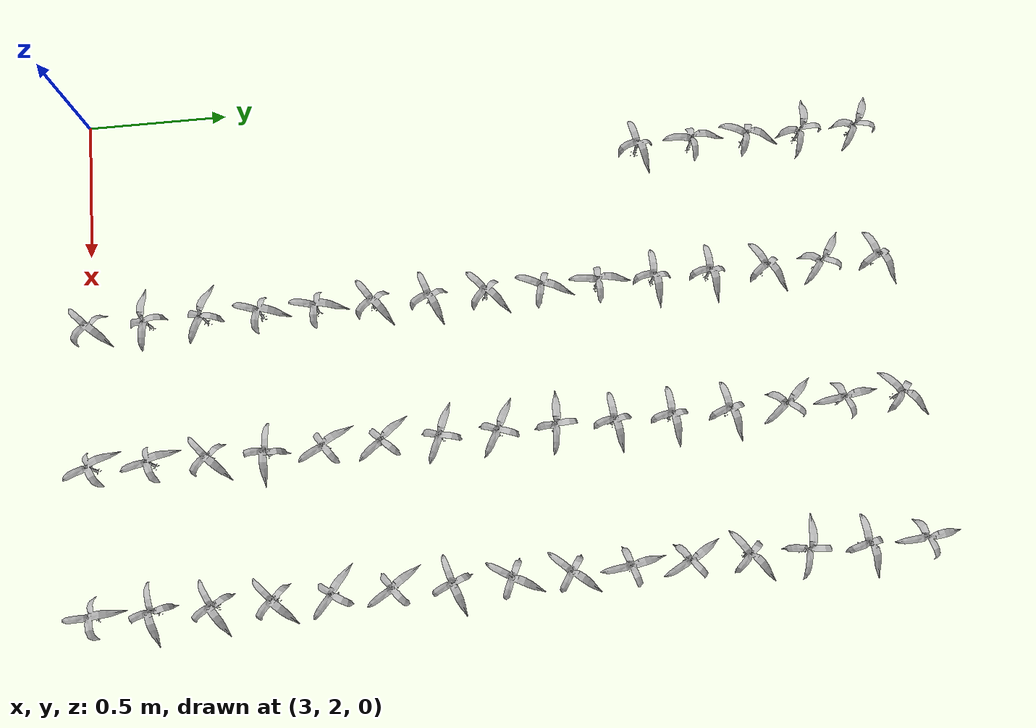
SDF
<sdf version="1.7">
 <world name="default">
  <model name="maize_3.304538114598593_3.9750000000000005">
   <static>1</static>
   <link name="link">
    <inertial>
     <mass>0.2</mass>
     <inertia>
      <ixx>0.166667</ixx>
      <ixy>0</ixy>
      <ixz>0</ixz>
      <iyy>0.166667</iyy>
      <iyz>0</iyz>
      <izz>0.166667</izz>
     </inertia>
    </inertial>
    <collision name="collision">
     <geometry><mesh><uri>model://corn_3/meshes/corn.dae</uri><scale>0.25 0.25 0.25</scale></mesh></geometry>
     <surface>
      <friction><ode><mu>0</mu><mu2>0</mu2></ode></friction>
      <contact><ode><kp>0</kp><kd>0</kd><max_vel>0</max_vel><min_depth>0.002</min_depth></ode></contact>
     </surface>
    </collision>
    <visual name="visual">
     <geometry><mesh><uri>model://corn_3/meshes/corn.dae</uri><scale>0.25 0.25 0.25</scale></mesh></geometry>
    </visual>
    <velocity_decay><linear>0</linear><angular>0</angular></velocity_decay>
   </link>
   <pose>3.30454 3.975 0.05 0 -0 0.302722</pose>
  </model>
  <model name="maize_3.304538114598593_4.170000000000001">
   <static>1</static>
   <link name="link">
    <inertial>
     <mass>0.2</mass>
     <inertia>
      <ixx>0.166667</ixx>
      <ixy>0</ixy>
      <ixz>0</ixz>
      <iyy>0.166667</iyy>
      <iyz>0</iyz>
      <izz>0.166667</izz>
     </inertia>
    </inertial>
    <collision name="collision">
     <geometry><mesh><uri>model://corn_3/meshes/corn.dae</uri><scale>0.25 0.25 0.25</scale></mesh></geometry>
     <surface>
      <friction><ode><mu>0</mu><mu2>0</mu2></ode></friction>
      <contact><ode><kp>0</kp><kd>0</kd><max_vel>0</max_vel><min_depth>0.002</min_depth></ode></contact>
     </surface>
    </collision>
    <visual name="visual">
     <geometry><mesh><uri>model://corn_3/meshes/corn.dae</uri><scale>0.25 0.25 0.25</scale></mesh></geometry>
    </visual>
    <velocity_decay><linear>0</linear><angular>0</angular></velocity_decay>
   </link>
   <pose>3.30454 4.17 0.05 0 -0 1.54632</pose>
  </model>
  <model name="maize_3.304538114598593_4.365000000000001">
   <static>1</static>
   <link name="link">
    <inertial>
     <mass>0.2</mass>
     <inertia>
      <ixx>0.166667</ixx>
      <ixy>0</ixy>
      <ixz>0</ixz>
      <iyy>0.166667</iyy>
      <iyz>0</iyz>
      <izz>0.166667</izz>
     </inertia>
    </inertial>
    <collision name="collision">
     <geometry><mesh><uri>model://corn_3/meshes/corn.dae</uri><scale>0.25 0.25 0.25</scale></mesh></geometry>
     <surface>
      <friction><ode><mu>0</mu><mu2>0</mu2></ode></friction>
      <contact><ode><kp>0</kp><kd>0</kd><max_vel>0</max_vel><min_depth>0.002</min_depth></ode></contact>
     </surface>
    </collision>
    <visual name="visual">
     <geometry><mesh><uri>model://corn_3/meshes/corn.dae</uri><scale>0.25 0.25 0.25</scale></mesh></geometry>
    </visual>
    <velocity_decay><linear>0</linear><angular>0</angular></velocity_decay>
   </link>
   <pose>3.30454 4.365 0.05 0 -0 1.19535</pose>
  </model>
  <model name="maize_3.304538114598593_4.56">
   <static>1</static>
   <link name="link">
    <inertial>
     <mass>0.2</mass>
     <inertia>
      <ixx>0.166667</ixx>
      <ixy>0</ixy>
      <ixz>0</ixz>
      <iyy>0.166667</iyy>
      <iyz>0</iyz>
      <izz>0.166667</izz>
     </inertia>
    </inertial>
    <collision name="collision">
     <geometry><mesh><uri>model://corn_3/meshes/corn.dae</uri><scale>0.25 0.25 0.25</scale></mesh></geometry>
     <surface>
      <friction><ode><mu>0</mu><mu2>0</mu2></ode></friction>
      <contact><ode><kp>0</kp><kd>0</kd><max_vel>0</max_vel><min_depth>0.002</min_depth></ode></contact>
     </surface>
    </collision>
    <visual name="visual">
     <geometry><mesh><uri>model://corn_3/meshes/corn.dae</uri><scale>0.25 0.25 0.25</scale></mesh></geometry>
    </visual>
    <velocity_decay><linear>0</linear><angular>0</angular></velocity_decay>
   </link>
   <pose>3.30454 4.56 0.05 0 -0 3.00074</pose>
  </model>
  <model name="maize_3.304538114598593_4.755">
   <static>1</static>
   <link name="link">
    <inertial>
     <mass>0.2</mass>
     <inertia>
      <ixx>0.166667</ixx>
      <ixy>0</ixy>
      <ixz>0</ixz>
      <iyy>0.166667</iyy>
      <iyz>0</iyz>
      <izz>0.166667</izz>
     </inertia>
    </inertial>
    <collision name="collision">
     <geometry><mesh><uri>model://corn_3/meshes/corn.dae</uri><scale>0.25 0.25 0.25</scale></mesh></geometry>
     <surface>
      <friction><ode><mu>0</mu><mu2>0</mu2></ode></friction>
      <contact><ode><kp>0</kp><kd>0</kd><max_vel>0</max_vel><min_depth>0.002</min_depth></ode></contact>
     </surface>
    </collision>
    <visual name="visual">
     <geometry><mesh><uri>model://corn_3/meshes/corn.dae</uri><scale>0.25 0.25 0.25</scale></mesh></geometry>
    </visual>
    <velocity_decay><linear>0</linear><angular>0</angular></velocity_decay>
   </link>
   <pose>3.30454 4.755 0.05 0 -0 2.71452</pose>
  </model>
  <model name="maize_3.792272817950934_2.0250000000000004">
   <static>1</static>
   <link name="link">
    <inertial>
     <mass>0.2</mass>
     <inertia>
      <ixx>0.166667</ixx>
      <ixy>0</ixy>
      <ixz>0</ixz>
      <iyy>0.166667</iyy>
      <iyz>0</iyz>
      <izz>0.166667</izz>
     </inertia>
    </inertial>
    <collision name="collision">
     <geometry><mesh><uri>model://corn_3/meshes/corn.dae</uri><scale>0.25 0.25 0.25</scale></mesh></geometry>
     <surface>
      <friction><ode><mu>0</mu><mu2>0</mu2></ode></friction>
      <contact><ode><kp>0</kp><kd>0</kd><max_vel>0</max_vel><min_depth>0.002</min_depth></ode></contact>
     </surface>
    </collision>
    <visual name="visual">
     <geometry><mesh><uri>model://corn_3/meshes/corn.dae</uri><scale>0.25 0.25 0.25</scale></mesh></geometry>
    </visual>
    <velocity_decay><linear>0</linear><angular>0</angular></velocity_decay>
   </link>
   <pose>3.79227 2.025 0.05 0 -0 0.865663</pose>
  </model>
  <model name="maize_3.792272817950934_2.2200000000000006">
   <static>1</static>
   <link name="link">
    <inertial>
     <mass>0.2</mass>
     <inertia>
      <ixx>0.166667</ixx>
      <ixy>0</ixy>
      <ixz>0</ixz>
      <iyy>0.166667</iyy>
      <iyz>0</iyz>
      <izz>0.166667</izz>
     </inertia>
    </inertial>
    <collision name="collision">
     <geometry><mesh><uri>model://corn_3/meshes/corn.dae</uri><scale>0.25 0.25 0.25</scale></mesh></geometry>
     <surface>
      <friction><ode><mu>0</mu><mu2>0</mu2></ode></friction>
      <contact><ode><kp>0</kp><kd>0</kd><max_vel>0</max_vel><min_depth>0.002</min_depth></ode></contact>
     </surface>
    </collision>
    <visual name="visual">
     <geometry><mesh><uri>model://corn_3/meshes/corn.dae</uri><scale>0.25 0.25 0.25</scale></mesh></geometry>
    </visual>
    <velocity_decay><linear>0</linear><angular>0</angular></velocity_decay>
   </link>
   <pose>3.79227 2.22 0.05 0 -0 3.11761</pose>
  </model>
  <model name="maize_3.792272817950934_2.415">
   <static>1</static>
   <link name="link">
    <inertial>
     <mass>0.2</mass>
     <inertia>
      <ixx>0.166667</ixx>
      <ixy>0</ixy>
      <ixz>0</ixz>
      <iyy>0.166667</iyy>
      <iyz>0</iyz>
      <izz>0.166667</izz>
     </inertia>
    </inertial>
    <collision name="collision">
     <geometry><mesh><uri>model://corn_3/meshes/corn.dae</uri><scale>0.25 0.25 0.25</scale></mesh></geometry>
     <surface>
      <friction><ode><mu>0</mu><mu2>0</mu2></ode></friction>
      <contact><ode><kp>0</kp><kd>0</kd><max_vel>0</max_vel><min_depth>0.002</min_depth></ode></contact>
     </surface>
    </collision>
    <visual name="visual">
     <geometry><mesh><uri>model://corn_3/meshes/corn.dae</uri><scale>0.25 0.25 0.25</scale></mesh></geometry>
    </visual>
    <velocity_decay><linear>0</linear><angular>0</angular></velocity_decay>
   </link>
   <pose>3.79227 2.415 0.05 0 -0 2.78088</pose>
  </model>
  <model name="maize_3.792272817950934_2.6100000000000003">
   <static>1</static>
   <link name="link">
    <inertial>
     <mass>0.2</mass>
     <inertia>
      <ixx>0.166667</ixx>
      <ixy>0</ixy>
      <ixz>0</ixz>
      <iyy>0.166667</iyy>
      <iyz>0</iyz>
      <izz>0.166667</izz>
     </inertia>
    </inertial>
    <collision name="collision">
     <geometry><mesh><uri>model://corn_3/meshes/corn.dae</uri><scale>0.25 0.25 0.25</scale></mesh></geometry>
     <surface>
      <friction><ode><mu>0</mu><mu2>0</mu2></ode></friction>
      <contact><ode><kp>0</kp><kd>0</kd><max_vel>0</max_vel><min_depth>0.002</min_depth></ode></contact>
     </surface>
    </collision>
    <visual name="visual">
     <geometry><mesh><uri>model://corn_3/meshes/corn.dae</uri><scale>0.25 0.25 0.25</scale></mesh></geometry>
    </visual>
    <velocity_decay><linear>0</linear><angular>0</angular></velocity_decay>
   </link>
   <pose>3.79227 2.61 0.05 0 -0 1.3439</pose>
  </model>
  <model name="maize_3.792272817950934_2.8050000000000006">
   <static>1</static>
   <link name="link">
    <inertial>
     <mass>0.2</mass>
     <inertia>
      <ixx>0.166667</ixx>
      <ixy>0</ixy>
      <ixz>0</ixz>
      <iyy>0.166667</iyy>
      <iyz>0</iyz>
      <izz>0.166667</izz>
     </inertia>
    </inertial>
    <collision name="collision">
     <geometry><mesh><uri>model://corn_3/meshes/corn.dae</uri><scale>0.25 0.25 0.25</scale></mesh></geometry>
     <surface>
      <friction><ode><mu>0</mu><mu2>0</mu2></ode></friction>
      <contact><ode><kp>0</kp><kd>0</kd><max_vel>0</max_vel><min_depth>0.002</min_depth></ode></contact>
     </surface>
    </collision>
    <visual name="visual">
     <geometry><mesh><uri>model://corn_3/meshes/corn.dae</uri><scale>0.25 0.25 0.25</scale></mesh></geometry>
    </visual>
    <velocity_decay><linear>0</linear><angular>0</angular></velocity_decay>
   </link>
   <pose>3.79227 2.805 0.05 0 -0 1.421</pose>
  </model>
  <model name="maize_3.792272817950934_3.000000000000001">
   <static>1</static>
   <link name="link">
    <inertial>
     <mass>0.2</mass>
     <inertia>
      <ixx>0.166667</ixx>
      <ixy>0</ixy>
      <ixz>0</ixz>
      <iyy>0.166667</iyy>
      <iyz>0</iyz>
      <izz>0.166667</izz>
     </inertia>
    </inertial>
    <collision name="collision">
     <geometry><mesh><uri>model://corn_3/meshes/corn.dae</uri><scale>0.25 0.25 0.25</scale></mesh></geometry>
     <surface>
      <friction><ode><mu>0</mu><mu2>0</mu2></ode></friction>
      <contact><ode><kp>0</kp><kd>0</kd><max_vel>0</max_vel><min_depth>0.002</min_depth></ode></contact>
     </surface>
    </collision>
    <visual name="visual">
     <geometry><mesh><uri>model://corn_3/meshes/corn.dae</uri><scale>0.25 0.25 0.25</scale></mesh></geometry>
    </visual>
    <velocity_decay><linear>0</linear><angular>0</angular></velocity_decay>
   </link>
   <pose>3.79227 3 0.05 0 -0 0.683355</pose>
  </model>
  <model name="maize_3.792272817950934_3.1950000000000003">
   <static>1</static>
   <link name="link">
    <inertial>
     <mass>0.2</mass>
     <inertia>
      <ixx>0.166667</ixx>
      <ixy>0</ixy>
      <ixz>0</ixz>
      <iyy>0.166667</iyy>
      <iyz>0</iyz>
      <izz>0.166667</izz>
     </inertia>
    </inertial>
    <collision name="collision">
     <geometry><mesh><uri>model://corn_3/meshes/corn.dae</uri><scale>0.25 0.25 0.25</scale></mesh></geometry>
     <surface>
      <friction><ode><mu>0</mu><mu2>0</mu2></ode></friction>
      <contact><ode><kp>0</kp><kd>0</kd><max_vel>0</max_vel><min_depth>0.002</min_depth></ode></contact>
     </surface>
    </collision>
    <visual name="visual">
     <geometry><mesh><uri>model://corn_3/meshes/corn.dae</uri><scale>0.25 0.25 0.25</scale></mesh></geometry>
    </visual>
    <velocity_decay><linear>0</linear><angular>0</angular></velocity_decay>
   </link>
   <pose>3.79227 3.195 0.05 0 -0 0.430194</pose>
  </model>
  <model name="maize_3.792272817950934_3.3899999999999997">
   <static>1</static>
   <link name="link">
    <inertial>
     <mass>0.2</mass>
     <inertia>
      <ixx>0.166667</ixx>
      <ixy>0</ixy>
      <ixz>0</ixz>
      <iyy>0.166667</iyy>
      <iyz>0</iyz>
      <izz>0.166667</izz>
     </inertia>
    </inertial>
    <collision name="collision">
     <geometry><mesh><uri>model://corn_3/meshes/corn.dae</uri><scale>0.25 0.25 0.25</scale></mesh></geometry>
     <surface>
      <friction><ode><mu>0</mu><mu2>0</mu2></ode></friction>
      <contact><ode><kp>0</kp><kd>0</kd><max_vel>0</max_vel><min_depth>0.002</min_depth></ode></contact>
     </surface>
    </collision>
    <visual name="visual">
     <geometry><mesh><uri>model://corn_3/meshes/corn.dae</uri><scale>0.25 0.25 0.25</scale></mesh></geometry>
    </visual>
    <velocity_decay><linear>0</linear><angular>0</angular></velocity_decay>
   </link>
   <pose>3.79227 3.39 0.05 0 -0 0.788651</pose>
  </model>
  <model name="maize_3.792272817950934_3.585">
   <static>1</static>
   <link name="link">
    <inertial>
     <mass>0.2</mass>
     <inertia>
      <ixx>0.166667</ixx>
      <ixy>0</ixy>
      <ixz>0</ixz>
      <iyy>0.166667</iyy>
      <iyz>0</iyz>
      <izz>0.166667</izz>
     </inertia>
    </inertial>
    <collision name="collision">
     <geometry><mesh><uri>model://corn_3/meshes/corn.dae</uri><scale>0.25 0.25 0.25</scale></mesh></geometry>
     <surface>
      <friction><ode><mu>0</mu><mu2>0</mu2></ode></friction>
      <contact><ode><kp>0</kp><kd>0</kd><max_vel>0</max_vel><min_depth>0.002</min_depth></ode></contact>
     </surface>
    </collision>
    <visual name="visual">
     <geometry><mesh><uri>model://corn_3/meshes/corn.dae</uri><scale>0.25 0.25 0.25</scale></mesh></geometry>
    </visual>
    <velocity_decay><linear>0</linear><angular>0</angular></velocity_decay>
   </link>
   <pose>3.79227 3.585 0.05 0 -0 1.2341</pose>
  </model>
  <model name="maize_3.792272817950934_3.7800000000000002">
   <static>1</static>
   <link name="link">
    <inertial>
     <mass>0.2</mass>
     <inertia>
      <ixx>0.166667</ixx>
      <ixy>0</ixy>
      <ixz>0</ixz>
      <iyy>0.166667</iyy>
      <iyz>0</iyz>
      <izz>0.166667</izz>
     </inertia>
    </inertial>
    <collision name="collision">
     <geometry><mesh><uri>model://corn_3/meshes/corn.dae</uri><scale>0.25 0.25 0.25</scale></mesh></geometry>
     <surface>
      <friction><ode><mu>0</mu><mu2>0</mu2></ode></friction>
      <contact><ode><kp>0</kp><kd>0</kd><max_vel>0</max_vel><min_depth>0.002</min_depth></ode></contact>
     </surface>
    </collision>
    <visual name="visual">
     <geometry><mesh><uri>model://corn_3/meshes/corn.dae</uri><scale>0.25 0.25 0.25</scale></mesh></geometry>
    </visual>
    <velocity_decay><linear>0</linear><angular>0</angular></velocity_decay>
   </link>
   <pose>3.79227 3.78 0.05 0 -0 1.50966</pose>
  </model>
  <model name="maize_3.792272817950934_3.9750000000000005">
   <static>1</static>
   <link name="link">
    <inertial>
     <mass>0.2</mass>
     <inertia>
      <ixx>0.166667</ixx>
      <ixy>0</ixy>
      <ixz>0</ixz>
      <iyy>0.166667</iyy>
      <iyz>0</iyz>
      <izz>0.166667</izz>
     </inertia>
    </inertial>
    <collision name="collision">
     <geometry><mesh><uri>model://corn_3/meshes/corn.dae</uri><scale>0.25 0.25 0.25</scale></mesh></geometry>
     <surface>
      <friction><ode><mu>0</mu><mu2>0</mu2></ode></friction>
      <contact><ode><kp>0</kp><kd>0</kd><max_vel>0</max_vel><min_depth>0.002</min_depth></ode></contact>
     </surface>
    </collision>
    <visual name="visual">
     <geometry><mesh><uri>model://corn_3/meshes/corn.dae</uri><scale>0.25 0.25 0.25</scale></mesh></geometry>
    </visual>
    <velocity_decay><linear>0</linear><angular>0</angular></velocity_decay>
   </link>
   <pose>3.79227 3.975 0.05 0 -0 0.119177</pose>
  </model>
  <model name="maize_3.792272817950934_4.170000000000001">
   <static>1</static>
   <link name="link">
    <inertial>
     <mass>0.2</mass>
     <inertia>
      <ixx>0.166667</ixx>
      <ixy>0</ixy>
      <ixz>0</ixz>
      <iyy>0.166667</iyy>
      <iyz>0</iyz>
      <izz>0.166667</izz>
     </inertia>
    </inertial>
    <collision name="collision">
     <geometry><mesh><uri>model://corn_3/meshes/corn.dae</uri><scale>0.25 0.25 0.25</scale></mesh></geometry>
     <surface>
      <friction><ode><mu>0</mu><mu2>0</mu2></ode></friction>
      <contact><ode><kp>0</kp><kd>0</kd><max_vel>0</max_vel><min_depth>0.002</min_depth></ode></contact>
     </surface>
    </collision>
    <visual name="visual">
     <geometry><mesh><uri>model://corn_3/meshes/corn.dae</uri><scale>0.25 0.25 0.25</scale></mesh></geometry>
    </visual>
    <velocity_decay><linear>0</linear><angular>0</angular></velocity_decay>
   </link>
   <pose>3.79227 4.17 0.05 0 -0 0.161159</pose>
  </model>
  <model name="maize_3.792272817950934_4.365000000000001">
   <static>1</static>
   <link name="link">
    <inertial>
     <mass>0.2</mass>
     <inertia>
      <ixx>0.166667</ixx>
      <ixy>0</ixy>
      <ixz>0</ixz>
      <iyy>0.166667</iyy>
      <iyz>0</iyz>
      <izz>0.166667</izz>
     </inertia>
    </inertial>
    <collision name="collision">
     <geometry><mesh><uri>model://corn_3/meshes/corn.dae</uri><scale>0.25 0.25 0.25</scale></mesh></geometry>
     <surface>
      <friction><ode><mu>0</mu><mu2>0</mu2></ode></friction>
      <contact><ode><kp>0</kp><kd>0</kd><max_vel>0</max_vel><min_depth>0.002</min_depth></ode></contact>
     </surface>
    </collision>
    <visual name="visual">
     <geometry><mesh><uri>model://corn_3/meshes/corn.dae</uri><scale>0.25 0.25 0.25</scale></mesh></geometry>
    </visual>
    <velocity_decay><linear>0</linear><angular>0</angular></velocity_decay>
   </link>
   <pose>3.79227 4.365 0.05 0 -0 0.593105</pose>
  </model>
  <model name="maize_3.792272817950934_4.56">
   <static>1</static>
   <link name="link">
    <inertial>
     <mass>0.2</mass>
     <inertia>
      <ixx>0.166667</ixx>
      <ixy>0</ixy>
      <ixz>0</ixz>
      <iyy>0.166667</iyy>
      <iyz>0</iyz>
      <izz>0.166667</izz>
     </inertia>
    </inertial>
    <collision name="collision">
     <geometry><mesh><uri>model://corn_3/meshes/corn.dae</uri><scale>0.25 0.25 0.25</scale></mesh></geometry>
     <surface>
      <friction><ode><mu>0</mu><mu2>0</mu2></ode></friction>
      <contact><ode><kp>0</kp><kd>0</kd><max_vel>0</max_vel><min_depth>0.002</min_depth></ode></contact>
     </surface>
    </collision>
    <visual name="visual">
     <geometry><mesh><uri>model://corn_3/meshes/corn.dae</uri><scale>0.25 0.25 0.25</scale></mesh></geometry>
    </visual>
    <velocity_decay><linear>0</linear><angular>0</angular></velocity_decay>
   </link>
   <pose>3.79227 4.56 0.05 0 -0 2.55872</pose>
  </model>
  <model name="maize_3.792272817950934_4.755">
   <static>1</static>
   <link name="link">
    <inertial>
     <mass>0.2</mass>
     <inertia>
      <ixx>0.166667</ixx>
      <ixy>0</ixy>
      <ixz>0</ixz>
      <iyy>0.166667</iyy>
      <iyz>0</iyz>
      <izz>0.166667</izz>
     </inertia>
    </inertial>
    <collision name="collision">
     <geometry><mesh><uri>model://corn_3/meshes/corn.dae</uri><scale>0.25 0.25 0.25</scale></mesh></geometry>
     <surface>
      <friction><ode><mu>0</mu><mu2>0</mu2></ode></friction>
      <contact><ode><kp>0</kp><kd>0</kd><max_vel>0</max_vel><min_depth>0.002</min_depth></ode></contact>
     </surface>
    </collision>
    <visual name="visual">
     <geometry><mesh><uri>model://corn_3/meshes/corn.dae</uri><scale>0.25 0.25 0.25</scale></mesh></geometry>
    </visual>
    <velocity_decay><linear>0</linear><angular>0</angular></velocity_decay>
   </link>
   <pose>3.79227 4.755 0.05 0 -0 0.458357</pose>
  </model>
  <model name="maize_4.279271472945556_2.0250000000000004">
   <static>1</static>
   <link name="link">
    <inertial>
     <mass>0.2</mass>
     <inertia>
      <ixx>0.166667</ixx>
      <ixy>0</ixy>
      <ixz>0</ixz>
      <iyy>0.166667</iyy>
      <iyz>0</iyz>
      <izz>0.166667</izz>
     </inertia>
    </inertial>
    <collision name="collision">
     <geometry><mesh><uri>model://corn_3/meshes/corn.dae</uri><scale>0.25 0.25 0.25</scale></mesh></geometry>
     <surface>
      <friction><ode><mu>0</mu><mu2>0</mu2></ode></friction>
      <contact><ode><kp>0</kp><kd>0</kd><max_vel>0</max_vel><min_depth>0.002</min_depth></ode></contact>
     </surface>
    </collision>
    <visual name="visual">
     <geometry><mesh><uri>model://corn_3/meshes/corn.dae</uri><scale>0.25 0.25 0.25</scale></mesh></geometry>
    </visual>
    <velocity_decay><linear>0</linear><angular>0</angular></velocity_decay>
   </link>
   <pose>4.27927 2.025 0.05 0 -0 2.0095</pose>
  </model>
  <model name="maize_4.279271472945556_2.2200000000000006">
   <static>1</static>
   <link name="link">
    <inertial>
     <mass>0.2</mass>
     <inertia>
      <ixx>0.166667</ixx>
      <ixy>0</ixy>
      <ixz>0</ixz>
      <iyy>0.166667</iyy>
      <iyz>0</iyz>
      <izz>0.166667</izz>
     </inertia>
    </inertial>
    <collision name="collision">
     <geometry><mesh><uri>model://corn_3/meshes/corn.dae</uri><scale>0.25 0.25 0.25</scale></mesh></geometry>
     <surface>
      <friction><ode><mu>0</mu><mu2>0</mu2></ode></friction>
      <contact><ode><kp>0</kp><kd>0</kd><max_vel>0</max_vel><min_depth>0.002</min_depth></ode></contact>
     </surface>
    </collision>
    <visual name="visual">
     <geometry><mesh><uri>model://corn_3/meshes/corn.dae</uri><scale>0.25 0.25 0.25</scale></mesh></geometry>
    </visual>
    <velocity_decay><linear>0</linear><angular>0</angular></velocity_decay>
   </link>
   <pose>4.27927 2.22 0.05 0 -0 1.87897</pose>
  </model>
  <model name="maize_4.279271472945556_2.415">
   <static>1</static>
   <link name="link">
    <inertial>
     <mass>0.2</mass>
     <inertia>
      <ixx>0.166667</ixx>
      <ixy>0</ixy>
      <ixz>0</ixz>
      <iyy>0.166667</iyy>
      <iyz>0</iyz>
      <izz>0.166667</izz>
     </inertia>
    </inertial>
    <collision name="collision">
     <geometry><mesh><uri>model://corn_3/meshes/corn.dae</uri><scale>0.25 0.25 0.25</scale></mesh></geometry>
     <surface>
      <friction><ode><mu>0</mu><mu2>0</mu2></ode></friction>
      <contact><ode><kp>0</kp><kd>0</kd><max_vel>0</max_vel><min_depth>0.002</min_depth></ode></contact>
     </surface>
    </collision>
    <visual name="visual">
     <geometry><mesh><uri>model://corn_3/meshes/corn.dae</uri><scale>0.25 0.25 0.25</scale></mesh></geometry>
    </visual>
    <velocity_decay><linear>0</linear><angular>0</angular></velocity_decay>
   </link>
   <pose>4.27927 2.415 0.05 0 -0 0.809149</pose>
  </model>
  <model name="maize_4.279271472945556_2.6100000000000003">
   <static>1</static>
   <link name="link">
    <inertial>
     <mass>0.2</mass>
     <inertia>
      <ixx>0.166667</ixx>
      <ixy>0</ixy>
      <ixz>0</ixz>
      <iyy>0.166667</iyy>
      <iyz>0</iyz>
      <izz>0.166667</izz>
     </inertia>
    </inertial>
    <collision name="collision">
     <geometry><mesh><uri>model://corn_3/meshes/corn.dae</uri><scale>0.25 0.25 0.25</scale></mesh></geometry>
     <surface>
      <friction><ode><mu>0</mu><mu2>0</mu2></ode></friction>
      <contact><ode><kp>0</kp><kd>0</kd><max_vel>0</max_vel><min_depth>0.002</min_depth></ode></contact>
     </surface>
    </collision>
    <visual name="visual">
     <geometry><mesh><uri>model://corn_3/meshes/corn.dae</uri><scale>0.25 0.25 0.25</scale></mesh></geometry>
    </visual>
    <velocity_decay><linear>0</linear><angular>0</angular></velocity_decay>
   </link>
   <pose>4.27927 2.61 0.05 0 -0 0.004294</pose>
  </model>
  <model name="maize_4.279271472945556_2.8050000000000006">
   <static>1</static>
   <link name="link">
    <inertial>
     <mass>0.2</mass>
     <inertia>
      <ixx>0.166667</ixx>
      <ixy>0</ixy>
      <ixz>0</ixz>
      <iyy>0.166667</iyy>
      <iyz>0</iyz>
      <izz>0.166667</izz>
     </inertia>
    </inertial>
    <collision name="collision">
     <geometry><mesh><uri>model://corn_3/meshes/corn.dae</uri><scale>0.25 0.25 0.25</scale></mesh></geometry>
     <surface>
      <friction><ode><mu>0</mu><mu2>0</mu2></ode></friction>
      <contact><ode><kp>0</kp><kd>0</kd><max_vel>0</max_vel><min_depth>0.002</min_depth></ode></contact>
     </surface>
    </collision>
    <visual name="visual">
     <geometry><mesh><uri>model://corn_3/meshes/corn.dae</uri><scale>0.25 0.25 0.25</scale></mesh></geometry>
    </visual>
    <velocity_decay><linear>0</linear><angular>0</angular></velocity_decay>
   </link>
   <pose>4.27927 2.805 0.05 0 -0 2.13438</pose>
  </model>
  <model name="maize_4.279271472945556_3.000000000000001">
   <static>1</static>
   <link name="link">
    <inertial>
     <mass>0.2</mass>
     <inertia>
      <ixx>0.166667</ixx>
      <ixy>0</ixy>
      <ixz>0</ixz>
      <iyy>0.166667</iyy>
      <iyz>0</iyz>
      <izz>0.166667</izz>
     </inertia>
    </inertial>
    <collision name="collision">
     <geometry><mesh><uri>model://corn_3/meshes/corn.dae</uri><scale>0.25 0.25 0.25</scale></mesh></geometry>
     <surface>
      <friction><ode><mu>0</mu><mu2>0</mu2></ode></friction>
      <contact><ode><kp>0</kp><kd>0</kd><max_vel>0</max_vel><min_depth>0.002</min_depth></ode></contact>
     </surface>
    </collision>
    <visual name="visual">
     <geometry><mesh><uri>model://corn_3/meshes/corn.dae</uri><scale>0.25 0.25 0.25</scale></mesh></geometry>
    </visual>
    <velocity_decay><linear>0</linear><angular>0</angular></velocity_decay>
   </link>
   <pose>4.27927 3 0.05 0 -0 2.31139</pose>
  </model>
  <model name="maize_4.279271472945556_3.1950000000000003">
   <static>1</static>
   <link name="link">
    <inertial>
     <mass>0.2</mass>
     <inertia>
      <ixx>0.166667</ixx>
      <ixy>0</ixy>
      <ixz>0</ixz>
      <iyy>0.166667</iyy>
      <iyz>0</iyz>
      <izz>0.166667</izz>
     </inertia>
    </inertial>
    <collision name="collision">
     <geometry><mesh><uri>model://corn_3/meshes/corn.dae</uri><scale>0.25 0.25 0.25</scale></mesh></geometry>
     <surface>
      <friction><ode><mu>0</mu><mu2>0</mu2></ode></friction>
      <contact><ode><kp>0</kp><kd>0</kd><max_vel>0</max_vel><min_depth>0.002</min_depth></ode></contact>
     </surface>
    </collision>
    <visual name="visual">
     <geometry><mesh><uri>model://corn_3/meshes/corn.dae</uri><scale>0.25 0.25 0.25</scale></mesh></geometry>
    </visual>
    <velocity_decay><linear>0</linear><angular>0</angular></velocity_decay>
   </link>
   <pose>4.27927 3.195 0.05 0 -0 2.81203</pose>
  </model>
  <model name="maize_4.279271472945556_3.3899999999999997">
   <static>1</static>
   <link name="link">
    <inertial>
     <mass>0.2</mass>
     <inertia>
      <ixx>0.166667</ixx>
      <ixy>0</ixy>
      <ixz>0</ixz>
      <iyy>0.166667</iyy>
      <iyz>0</iyz>
      <izz>0.166667</izz>
     </inertia>
    </inertial>
    <collision name="collision">
     <geometry><mesh><uri>model://corn_3/meshes/corn.dae</uri><scale>0.25 0.25 0.25</scale></mesh></geometry>
     <surface>
      <friction><ode><mu>0</mu><mu2>0</mu2></ode></friction>
      <contact><ode><kp>0</kp><kd>0</kd><max_vel>0</max_vel><min_depth>0.002</min_depth></ode></contact>
     </surface>
    </collision>
    <visual name="visual">
     <geometry><mesh><uri>model://corn_3/meshes/corn.dae</uri><scale>0.25 0.25 0.25</scale></mesh></geometry>
    </visual>
    <velocity_decay><linear>0</linear><angular>0</angular></velocity_decay>
   </link>
   <pose>4.27927 3.39 0.05 0 -0 2.71425</pose>
  </model>
  <model name="maize_4.279271472945556_3.585">
   <static>1</static>
   <link name="link">
    <inertial>
     <mass>0.2</mass>
     <inertia>
      <ixx>0.166667</ixx>
      <ixy>0</ixy>
      <ixz>0</ixz>
      <iyy>0.166667</iyy>
      <iyz>0</iyz>
      <izz>0.166667</izz>
     </inertia>
    </inertial>
    <collision name="collision">
     <geometry><mesh><uri>model://corn_3/meshes/corn.dae</uri><scale>0.25 0.25 0.25</scale></mesh></geometry>
     <surface>
      <friction><ode><mu>0</mu><mu2>0</mu2></ode></friction>
      <contact><ode><kp>0</kp><kd>0</kd><max_vel>0</max_vel><min_depth>0.002</min_depth></ode></contact>
     </surface>
    </collision>
    <visual name="visual">
     <geometry><mesh><uri>model://corn_3/meshes/corn.dae</uri><scale>0.25 0.25 0.25</scale></mesh></geometry>
    </visual>
    <velocity_decay><linear>0</linear><angular>0</angular></velocity_decay>
   </link>
   <pose>4.27927 3.585 0.05 0 -0 3.1112</pose>
  </model>
  <model name="maize_4.279271472945556_3.7800000000000002">
   <static>1</static>
   <link name="link">
    <inertial>
     <mass>0.2</mass>
     <inertia>
      <ixx>0.166667</ixx>
      <ixy>0</ixy>
      <ixz>0</ixz>
      <iyy>0.166667</iyy>
      <iyz>0</iyz>
      <izz>0.166667</izz>
     </inertia>
    </inertial>
    <collision name="collision">
     <geometry><mesh><uri>model://corn_3/meshes/corn.dae</uri><scale>0.25 0.25 0.25</scale></mesh></geometry>
     <surface>
      <friction><ode><mu>0</mu><mu2>0</mu2></ode></friction>
      <contact><ode><kp>0</kp><kd>0</kd><max_vel>0</max_vel><min_depth>0.002</min_depth></ode></contact>
     </surface>
    </collision>
    <visual name="visual">
     <geometry><mesh><uri>model://corn_3/meshes/corn.dae</uri><scale>0.25 0.25 0.25</scale></mesh></geometry>
    </visual>
    <velocity_decay><linear>0</linear><angular>0</angular></velocity_decay>
   </link>
   <pose>4.27927 3.78 0.05 0 -0 0.19721</pose>
  </model>
  <model name="maize_4.279271472945556_3.9750000000000005">
   <static>1</static>
   <link name="link">
    <inertial>
     <mass>0.2</mass>
     <inertia>
      <ixx>0.166667</ixx>
      <ixy>0</ixy>
      <ixz>0</ixz>
      <iyy>0.166667</iyy>
      <iyz>0</iyz>
      <izz>0.166667</izz>
     </inertia>
    </inertial>
    <collision name="collision">
     <geometry><mesh><uri>model://corn_3/meshes/corn.dae</uri><scale>0.25 0.25 0.25</scale></mesh></geometry>
     <surface>
      <friction><ode><mu>0</mu><mu2>0</mu2></ode></friction>
      <contact><ode><kp>0</kp><kd>0</kd><max_vel>0</max_vel><min_depth>0.002</min_depth></ode></contact>
     </surface>
    </collision>
    <visual name="visual">
     <geometry><mesh><uri>model://corn_3/meshes/corn.dae</uri><scale>0.25 0.25 0.25</scale></mesh></geometry>
    </visual>
    <velocity_decay><linear>0</linear><angular>0</angular></velocity_decay>
   </link>
   <pose>4.27927 3.975 0.05 0 -0 0.161831</pose>
  </model>
  <model name="maize_4.279271472945556_4.170000000000001">
   <static>1</static>
   <link name="link">
    <inertial>
     <mass>0.2</mass>
     <inertia>
      <ixx>0.166667</ixx>
      <ixy>0</ixy>
      <ixz>0</ixz>
      <iyy>0.166667</iyy>
      <iyz>0</iyz>
      <izz>0.166667</izz>
     </inertia>
    </inertial>
    <collision name="collision">
     <geometry><mesh><uri>model://corn_3/meshes/corn.dae</uri><scale>0.25 0.25 0.25</scale></mesh></geometry>
     <surface>
      <friction><ode><mu>0</mu><mu2>0</mu2></ode></friction>
      <contact><ode><kp>0</kp><kd>0</kd><max_vel>0</max_vel><min_depth>0.002</min_depth></ode></contact>
     </surface>
    </collision>
    <visual name="visual">
     <geometry><mesh><uri>model://corn_3/meshes/corn.dae</uri><scale>0.25 0.25 0.25</scale></mesh></geometry>
    </visual>
    <velocity_decay><linear>0</linear><angular>0</angular></velocity_decay>
   </link>
   <pose>4.27927 4.17 0.05 0 -0 0.282252</pose>
  </model>
  <model name="maize_4.279271472945556_4.365000000000001">
   <static>1</static>
   <link name="link">
    <inertial>
     <mass>0.2</mass>
     <inertia>
      <ixx>0.166667</ixx>
      <ixy>0</ixy>
      <ixz>0</ixz>
      <iyy>0.166667</iyy>
      <iyz>0</iyz>
      <izz>0.166667</izz>
     </inertia>
    </inertial>
    <collision name="collision">
     <geometry><mesh><uri>model://corn_3/meshes/corn.dae</uri><scale>0.25 0.25 0.25</scale></mesh></geometry>
     <surface>
      <friction><ode><mu>0</mu><mu2>0</mu2></ode></friction>
      <contact><ode><kp>0</kp><kd>0</kd><max_vel>0</max_vel><min_depth>0.002</min_depth></ode></contact>
     </surface>
    </collision>
    <visual name="visual">
     <geometry><mesh><uri>model://corn_3/meshes/corn.dae</uri><scale>0.25 0.25 0.25</scale></mesh></geometry>
    </visual>
    <velocity_decay><linear>0</linear><angular>0</angular></velocity_decay>
   </link>
   <pose>4.27927 4.365 0.05 0 -0 2.34136</pose>
  </model>
  <model name="maize_4.279271472945556_4.56">
   <static>1</static>
   <link name="link">
    <inertial>
     <mass>0.2</mass>
     <inertia>
      <ixx>0.166667</ixx>
      <ixy>0</ixy>
      <ixz>0</ixz>
      <iyy>0.166667</iyy>
      <iyz>0</iyz>
      <izz>0.166667</izz>
     </inertia>
    </inertial>
    <collision name="collision">
     <geometry><mesh><uri>model://corn_3/meshes/corn.dae</uri><scale>0.25 0.25 0.25</scale></mesh></geometry>
     <surface>
      <friction><ode><mu>0</mu><mu2>0</mu2></ode></friction>
      <contact><ode><kp>0</kp><kd>0</kd><max_vel>0</max_vel><min_depth>0.002</min_depth></ode></contact>
     </surface>
    </collision>
    <visual name="visual">
     <geometry><mesh><uri>model://corn_3/meshes/corn.dae</uri><scale>0.25 0.25 0.25</scale></mesh></geometry>
    </visual>
    <velocity_decay><linear>0</linear><angular>0</angular></velocity_decay>
   </link>
   <pose>4.27927 4.56 0.05 0 -0 1.7748</pose>
  </model>
  <model name="maize_4.279271472945556_4.755">
   <static>1</static>
   <link name="link">
    <inertial>
     <mass>0.2</mass>
     <inertia>
      <ixx>0.166667</ixx>
      <ixy>0</ixy>
      <ixz>0</ixz>
      <iyy>0.166667</iyy>
      <iyz>0</iyz>
      <izz>0.166667</izz>
     </inertia>
    </inertial>
    <collision name="collision">
     <geometry><mesh><uri>model://corn_3/meshes/corn.dae</uri><scale>0.25 0.25 0.25</scale></mesh></geometry>
     <surface>
      <friction><ode><mu>0</mu><mu2>0</mu2></ode></friction>
      <contact><ode><kp>0</kp><kd>0</kd><max_vel>0</max_vel><min_depth>0.002</min_depth></ode></contact>
     </surface>
    </collision>
    <visual name="visual">
     <geometry><mesh><uri>model://corn_3/meshes/corn.dae</uri><scale>0.25 0.25 0.25</scale></mesh></geometry>
    </visual>
    <velocity_decay><linear>0</linear><angular>0</angular></velocity_decay>
   </link>
   <pose>4.27927 4.755 0.05 0 -0 0.78791</pose>
  </model>
  <model name="maize_4.765534909304227_2.0250000000000004">
   <static>1</static>
   <link name="link">
    <inertial>
     <mass>0.2</mass>
     <inertia>
      <ixx>0.166667</ixx>
      <ixy>0</ixy>
      <ixz>0</ixz>
      <iyy>0.166667</iyy>
      <iyz>0</iyz>
      <izz>0.166667</izz>
     </inertia>
    </inertial>
    <collision name="collision">
     <geometry><mesh><uri>model://corn_3/meshes/corn.dae</uri><scale>0.25 0.25 0.25</scale></mesh></geometry>
     <surface>
      <friction><ode><mu>0</mu><mu2>0</mu2></ode></friction>
      <contact><ode><kp>0</kp><kd>0</kd><max_vel>0</max_vel><min_depth>0.002</min_depth></ode></contact>
     </surface>
    </collision>
    <visual name="visual">
     <geometry><mesh><uri>model://corn_3/meshes/corn.dae</uri><scale>0.25 0.25 0.25</scale></mesh></geometry>
    </visual>
    <velocity_decay><linear>0</linear><angular>0</angular></velocity_decay>
   </link>
   <pose>4.76553 2.025 0.05 0 -0 1.70078</pose>
  </model>
  <model name="maize_4.765534909304227_2.2200000000000006">
   <static>1</static>
   <link name="link">
    <inertial>
     <mass>0.2</mass>
     <inertia>
      <ixx>0.166667</ixx>
      <ixy>0</ixy>
      <ixz>0</ixz>
      <iyy>0.166667</iyy>
      <iyz>0</iyz>
      <izz>0.166667</izz>
     </inertia>
    </inertial>
    <collision name="collision">
     <geometry><mesh><uri>model://corn_3/meshes/corn.dae</uri><scale>0.25 0.25 0.25</scale></mesh></geometry>
     <surface>
      <friction><ode><mu>0</mu><mu2>0</mu2></ode></friction>
      <contact><ode><kp>0</kp><kd>0</kd><max_vel>0</max_vel><min_depth>0.002</min_depth></ode></contact>
     </surface>
    </collision>
    <visual name="visual">
     <geometry><mesh><uri>model://corn_3/meshes/corn.dae</uri><scale>0.25 0.25 0.25</scale></mesh></geometry>
    </visual>
    <velocity_decay><linear>0</linear><angular>0</angular></velocity_decay>
   </link>
   <pose>4.76553 2.22 0.05 0 -0 0.247706</pose>
  </model>
  <model name="maize_4.765534909304227_2.415">
   <static>1</static>
   <link name="link">
    <inertial>
     <mass>0.2</mass>
     <inertia>
      <ixx>0.166667</ixx>
      <ixy>0</ixy>
      <ixz>0</ixz>
      <iyy>0.166667</iyy>
      <iyz>0</iyz>
      <izz>0.166667</izz>
     </inertia>
    </inertial>
    <collision name="collision">
     <geometry><mesh><uri>model://corn_3/meshes/corn.dae</uri><scale>0.25 0.25 0.25</scale></mesh></geometry>
     <surface>
      <friction><ode><mu>0</mu><mu2>0</mu2></ode></friction>
      <contact><ode><kp>0</kp><kd>0</kd><max_vel>0</max_vel><min_depth>0.002</min_depth></ode></contact>
     </surface>
    </collision>
    <visual name="visual">
     <geometry><mesh><uri>model://corn_3/meshes/corn.dae</uri><scale>0.25 0.25 0.25</scale></mesh></geometry>
    </visual>
    <velocity_decay><linear>0</linear><angular>0</angular></velocity_decay>
   </link>
   <pose>4.76553 2.415 0.05 0 -0 0.550979</pose>
  </model>
  <model name="maize_4.765534909304227_2.6100000000000003">
   <static>1</static>
   <link name="link">
    <inertial>
     <mass>0.2</mass>
     <inertia>
      <ixx>0.166667</ixx>
      <ixy>0</ixy>
      <ixz>0</ixz>
      <iyy>0.166667</iyy>
      <iyz>0</iyz>
      <izz>0.166667</izz>
     </inertia>
    </inertial>
    <collision name="collision">
     <geometry><mesh><uri>model://corn_3/meshes/corn.dae</uri><scale>0.25 0.25 0.25</scale></mesh></geometry>
     <surface>
      <friction><ode><mu>0</mu><mu2>0</mu2></ode></friction>
      <contact><ode><kp>0</kp><kd>0</kd><max_vel>0</max_vel><min_depth>0.002</min_depth></ode></contact>
     </surface>
    </collision>
    <visual name="visual">
     <geometry><mesh><uri>model://corn_3/meshes/corn.dae</uri><scale>0.25 0.25 0.25</scale></mesh></geometry>
    </visual>
    <velocity_decay><linear>0</linear><angular>0</angular></velocity_decay>
   </link>
   <pose>4.76553 2.61 0.05 0 -0 0.822823</pose>
  </model>
  <model name="maize_4.765534909304227_2.8050000000000006">
   <static>1</static>
   <link name="link">
    <inertial>
     <mass>0.2</mass>
     <inertia>
      <ixx>0.166667</ixx>
      <ixy>0</ixy>
      <ixz>0</ixz>
      <iyy>0.166667</iyy>
      <iyz>0</iyz>
      <izz>0.166667</izz>
     </inertia>
    </inertial>
    <collision name="collision">
     <geometry><mesh><uri>model://corn_3/meshes/corn.dae</uri><scale>0.25 0.25 0.25</scale></mesh></geometry>
     <surface>
      <friction><ode><mu>0</mu><mu2>0</mu2></ode></friction>
      <contact><ode><kp>0</kp><kd>0</kd><max_vel>0</max_vel><min_depth>0.002</min_depth></ode></contact>
     </surface>
    </collision>
    <visual name="visual">
     <geometry><mesh><uri>model://corn_3/meshes/corn.dae</uri><scale>0.25 0.25 0.25</scale></mesh></geometry>
    </visual>
    <velocity_decay><linear>0</linear><angular>0</angular></velocity_decay>
   </link>
   <pose>4.76553 2.805 0.05 0 -0 2.52697</pose>
  </model>
  <model name="maize_4.765534909304227_3.000000000000001">
   <static>1</static>
   <link name="link">
    <inertial>
     <mass>0.2</mass>
     <inertia>
      <ixx>0.166667</ixx>
      <ixy>0</ixy>
      <ixz>0</ixz>
      <iyy>0.166667</iyy>
      <iyz>0</iyz>
      <izz>0.166667</izz>
     </inertia>
    </inertial>
    <collision name="collision">
     <geometry><mesh><uri>model://corn_3/meshes/corn.dae</uri><scale>0.25 0.25 0.25</scale></mesh></geometry>
     <surface>
      <friction><ode><mu>0</mu><mu2>0</mu2></ode></friction>
      <contact><ode><kp>0</kp><kd>0</kd><max_vel>0</max_vel><min_depth>0.002</min_depth></ode></contact>
     </surface>
    </collision>
    <visual name="visual">
     <geometry><mesh><uri>model://corn_3/meshes/corn.dae</uri><scale>0.25 0.25 0.25</scale></mesh></geometry>
    </visual>
    <velocity_decay><linear>0</linear><angular>0</angular></velocity_decay>
   </link>
   <pose>4.76553 3 0.05 0 -0 2.21307</pose>
  </model>
  <model name="maize_4.765534909304227_3.1950000000000003">
   <static>1</static>
   <link name="link">
    <inertial>
     <mass>0.2</mass>
     <inertia>
      <ixx>0.166667</ixx>
      <ixy>0</ixy>
      <ixz>0</ixz>
      <iyy>0.166667</iyy>
      <iyz>0</iyz>
      <izz>0.166667</izz>
     </inertia>
    </inertial>
    <collision name="collision">
     <geometry><mesh><uri>model://corn_3/meshes/corn.dae</uri><scale>0.25 0.25 0.25</scale></mesh></geometry>
     <surface>
      <friction><ode><mu>0</mu><mu2>0</mu2></ode></friction>
      <contact><ode><kp>0</kp><kd>0</kd><max_vel>0</max_vel><min_depth>0.002</min_depth></ode></contact>
     </surface>
    </collision>
    <visual name="visual">
     <geometry><mesh><uri>model://corn_3/meshes/corn.dae</uri><scale>0.25 0.25 0.25</scale></mesh></geometry>
    </visual>
    <velocity_decay><linear>0</linear><angular>0</angular></velocity_decay>
   </link>
   <pose>4.76553 3.195 0.05 0 -0 0.377167</pose>
  </model>
  <model name="maize_4.765534909304227_3.3899999999999997">
   <static>1</static>
   <link name="link">
    <inertial>
     <mass>0.2</mass>
     <inertia>
      <ixx>0.166667</ixx>
      <ixy>0</ixy>
      <ixz>0</ixz>
      <iyy>0.166667</iyy>
      <iyz>0</iyz>
      <izz>0.166667</izz>
     </inertia>
    </inertial>
    <collision name="collision">
     <geometry><mesh><uri>model://corn_3/meshes/corn.dae</uri><scale>0.25 0.25 0.25</scale></mesh></geometry>
     <surface>
      <friction><ode><mu>0</mu><mu2>0</mu2></ode></friction>
      <contact><ode><kp>0</kp><kd>0</kd><max_vel>0</max_vel><min_depth>0.002</min_depth></ode></contact>
     </surface>
    </collision>
    <visual name="visual">
     <geometry><mesh><uri>model://corn_3/meshes/corn.dae</uri><scale>0.25 0.25 0.25</scale></mesh></geometry>
    </visual>
    <velocity_decay><linear>0</linear><angular>0</angular></velocity_decay>
   </link>
   <pose>4.76553 3.39 0.05 0 -0 1.10742</pose>
  </model>
  <model name="maize_4.765534909304227_3.585">
   <static>1</static>
   <link name="link">
    <inertial>
     <mass>0.2</mass>
     <inertia>
      <ixx>0.166667</ixx>
      <ixy>0</ixy>
      <ixz>0</ixz>
      <iyy>0.166667</iyy>
      <iyz>0</iyz>
      <izz>0.166667</izz>
     </inertia>
    </inertial>
    <collision name="collision">
     <geometry><mesh><uri>model://corn_3/meshes/corn.dae</uri><scale>0.25 0.25 0.25</scale></mesh></geometry>
     <surface>
      <friction><ode><mu>0</mu><mu2>0</mu2></ode></friction>
      <contact><ode><kp>0</kp><kd>0</kd><max_vel>0</max_vel><min_depth>0.002</min_depth></ode></contact>
     </surface>
    </collision>
    <visual name="visual">
     <geometry><mesh><uri>model://corn_3/meshes/corn.dae</uri><scale>0.25 0.25 0.25</scale></mesh></geometry>
    </visual>
    <velocity_decay><linear>0</linear><angular>0</angular></velocity_decay>
   </link>
   <pose>4.76553 3.585 0.05 0 -0 0.917994</pose>
  </model>
  <model name="maize_4.765534909304227_3.7800000000000002">
   <static>1</static>
   <link name="link">
    <inertial>
     <mass>0.2</mass>
     <inertia>
      <ixx>0.166667</ixx>
      <ixy>0</ixy>
      <ixz>0</ixz>
      <iyy>0.166667</iyy>
      <iyz>0</iyz>
      <izz>0.166667</izz>
     </inertia>
    </inertial>
    <collision name="collision">
     <geometry><mesh><uri>model://corn_3/meshes/corn.dae</uri><scale>0.25 0.25 0.25</scale></mesh></geometry>
     <surface>
      <friction><ode><mu>0</mu><mu2>0</mu2></ode></friction>
      <contact><ode><kp>0</kp><kd>0</kd><max_vel>0</max_vel><min_depth>0.002</min_depth></ode></contact>
     </surface>
    </collision>
    <visual name="visual">
     <geometry><mesh><uri>model://corn_3/meshes/corn.dae</uri><scale>0.25 0.25 0.25</scale></mesh></geometry>
    </visual>
    <velocity_decay><linear>0</linear><angular>0</angular></velocity_decay>
   </link>
   <pose>4.76553 3.78 0.05 0 -0 1.79358</pose>
  </model>
  <model name="maize_4.765534909304227_3.9750000000000005">
   <static>1</static>
   <link name="link">
    <inertial>
     <mass>0.2</mass>
     <inertia>
      <ixx>0.166667</ixx>
      <ixy>0</ixy>
      <ixz>0</ixz>
      <iyy>0.166667</iyy>
      <iyz>0</iyz>
      <izz>0.166667</izz>
     </inertia>
    </inertial>
    <collision name="collision">
     <geometry><mesh><uri>model://corn_3/meshes/corn.dae</uri><scale>0.25 0.25 0.25</scale></mesh></geometry>
     <surface>
      <friction><ode><mu>0</mu><mu2>0</mu2></ode></friction>
      <contact><ode><kp>0</kp><kd>0</kd><max_vel>0</max_vel><min_depth>0.002</min_depth></ode></contact>
     </surface>
    </collision>
    <visual name="visual">
     <geometry><mesh><uri>model://corn_3/meshes/corn.dae</uri><scale>0.25 0.25 0.25</scale></mesh></geometry>
    </visual>
    <velocity_decay><linear>0</linear><angular>0</angular></velocity_decay>
   </link>
   <pose>4.76553 3.975 0.05 0 -0 2.14108</pose>
  </model>
  <model name="maize_4.765534909304227_4.170000000000001">
   <static>1</static>
   <link name="link">
    <inertial>
     <mass>0.2</mass>
     <inertia>
      <ixx>0.166667</ixx>
      <ixy>0</ixy>
      <ixz>0</ixz>
      <iyy>0.166667</iyy>
      <iyz>0</iyz>
      <izz>0.166667</izz>
     </inertia>
    </inertial>
    <collision name="collision">
     <geometry><mesh><uri>model://corn_3/meshes/corn.dae</uri><scale>0.25 0.25 0.25</scale></mesh></geometry>
     <surface>
      <friction><ode><mu>0</mu><mu2>0</mu2></ode></friction>
      <contact><ode><kp>0</kp><kd>0</kd><max_vel>0</max_vel><min_depth>0.002</min_depth></ode></contact>
     </surface>
    </collision>
    <visual name="visual">
     <geometry><mesh><uri>model://corn_3/meshes/corn.dae</uri><scale>0.25 0.25 0.25</scale></mesh></geometry>
    </visual>
    <velocity_decay><linear>0</linear><angular>0</angular></velocity_decay>
   </link>
   <pose>4.76553 4.17 0.05 0 -0 0.692412</pose>
  </model>
  <model name="maize_4.765534909304227_4.365000000000001">
   <static>1</static>
   <link name="link">
    <inertial>
     <mass>0.2</mass>
     <inertia>
      <ixx>0.166667</ixx>
      <ixy>0</ixy>
      <ixz>0</ixz>
      <iyy>0.166667</iyy>
      <iyz>0</iyz>
      <izz>0.166667</izz>
     </inertia>
    </inertial>
    <collision name="collision">
     <geometry><mesh><uri>model://corn_3/meshes/corn.dae</uri><scale>0.25 0.25 0.25</scale></mesh></geometry>
     <surface>
      <friction><ode><mu>0</mu><mu2>0</mu2></ode></friction>
      <contact><ode><kp>0</kp><kd>0</kd><max_vel>0</max_vel><min_depth>0.002</min_depth></ode></contact>
     </surface>
    </collision>
    <visual name="visual">
     <geometry><mesh><uri>model://corn_3/meshes/corn.dae</uri><scale>0.25 0.25 0.25</scale></mesh></geometry>
    </visual>
    <velocity_decay><linear>0</linear><angular>0</angular></velocity_decay>
   </link>
   <pose>4.76553 4.365 0.05 0 -0 2.98225</pose>
  </model>
  <model name="maize_4.765534909304227_4.56">
   <static>1</static>
   <link name="link">
    <inertial>
     <mass>0.2</mass>
     <inertia>
      <ixx>0.166667</ixx>
      <ixy>0</ixy>
      <ixz>0</ixz>
      <iyy>0.166667</iyy>
      <iyz>0</iyz>
      <izz>0.166667</izz>
     </inertia>
    </inertial>
    <collision name="collision">
     <geometry><mesh><uri>model://corn_3/meshes/corn.dae</uri><scale>0.25 0.25 0.25</scale></mesh></geometry>
     <surface>
      <friction><ode><mu>0</mu><mu2>0</mu2></ode></friction>
      <contact><ode><kp>0</kp><kd>0</kd><max_vel>0</max_vel><min_depth>0.002</min_depth></ode></contact>
     </surface>
    </collision>
    <visual name="visual">
     <geometry><mesh><uri>model://corn_3/meshes/corn.dae</uri><scale>0.25 0.25 0.25</scale></mesh></geometry>
    </visual>
    <velocity_decay><linear>0</linear><angular>0</angular></velocity_decay>
   </link>
   <pose>4.76553 4.56 0.05 0 -0 0.177774</pose>
  </model>
  <model name="maize_4.765534909304227_4.755">
   <static>1</static>
   <link name="link">
    <inertial>
     <mass>0.2</mass>
     <inertia>
      <ixx>0.166667</ixx>
      <ixy>0</ixy>
      <ixz>0</ixz>
      <iyy>0.166667</iyy>
      <iyz>0</iyz>
      <izz>0.166667</izz>
     </inertia>
    </inertial>
    <collision name="collision">
     <geometry><mesh><uri>model://corn_3/meshes/corn.dae</uri><scale>0.25 0.25 0.25</scale></mesh></geometry>
     <surface>
      <friction><ode><mu>0</mu><mu2>0</mu2></ode></friction>
      <contact><ode><kp>0</kp><kd>0</kd><max_vel>0</max_vel><min_depth>0.002</min_depth></ode></contact>
     </surface>
    </collision>
    <visual name="visual">
     <geometry><mesh><uri>model://corn_3/meshes/corn.dae</uri><scale>0.25 0.25 0.25</scale></mesh></geometry>
    </visual>
    <velocity_decay><linear>0</linear><angular>0</angular></velocity_decay>
   </link>
   <pose>4.76553 4.755 0.05 0 -0 1.73609</pose>
  </model>
 </world>
</sdf>
